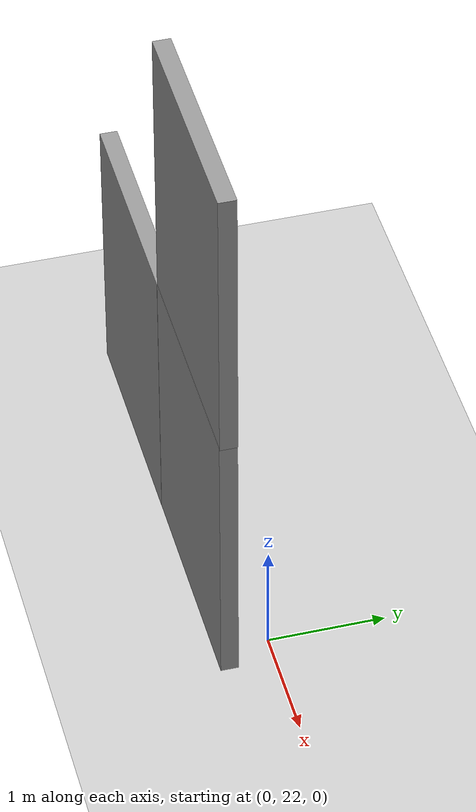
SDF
<sdf version="1.6">
 <world name="default">
  <model name="ground_plane">
   <static>1</static>
   <link name="link">
    <collision name="collision">
     <geometry><plane><normal>0 0 1</normal><size>100 100</size></plane></geometry>
     <surface><friction><ode><mu>100</mu><mu2>50</mu2></ode></friction></surface>
    </collision>
    <visual name="visual">
     <cast_shadows>0</cast_shadows>
     <geometry><plane><normal>0 0 1</normal><size>100 100</size></plane></geometry>
     <material>
      <script><uri>file://media/materials/scripts/gazebo.material</uri><name>Gazebo/Grey</name></script>
     </material>
    </visual>
   </link>
  </model>
  <model name="2mWall_0">
   <pose>-0.769249 21.6167 2.48014 0 -0 0</pose>
   <link name="Wall_0">
    <collision name="Wall_0_Collision">
     <geometry><box><size>2 0.15 2.5</size></box></geometry>
     <pose>0 0 1.25 0 -0 0</pose>
    </collision>
    <visual name="Wall_0_Visual">
     <pose>0 0 1.25 0 -0 0</pose>
     <geometry><box><size>2 0.15 2.5</size></box></geometry>
     <material>
      <script><uri>file://media/materials/scripts/gazebo.material</uri><name>Gazebo/Grey</name></script>
      <ambient>1 1 1 1</ambient>
     </material>
     <meta><layer>0</layer></meta>
    </visual>
   </link>
   <static>1</static>
  </model>
  <model name="2mWall_clone">
   <pose>-2.77161 21.6136 0 0 -0 0</pose>
   <link name="Wall_0">
    <collision name="Wall_0_Collision">
     <geometry><box><size>2 0.15 2.5</size></box></geometry>
     <pose>0 0 1.25 0 -0 0</pose>
    </collision>
    <visual name="Wall_0_Visual">
     <pose>0 0 1.25 0 -0 0</pose>
     <geometry><box><size>2 0.15 2.5</size></box></geometry>
     <material>
      <script><uri>file://media/materials/scripts/gazebo.material</uri><name>Gazebo/Grey</name></script>
      <ambient>1 1 1 1</ambient>
     </material>
     <meta><layer>0</layer></meta>
    </visual>
   </link>
   <static>1</static>
  </model>
  <model name="2mWall_0_clone">
   <pose>-0.769776 21.6145 0 0 -0 0</pose>
   <link name="Wall_0">
    <collision name="Wall_0_Collision">
     <geometry><box><size>2 0.15 2.5</size></box></geometry>
     <pose>0 0 1.25 0 -0 0</pose>
    </collision>
    <visual name="Wall_0_Visual">
     <pose>0 0 1.25 0 -0 0</pose>
     <geometry><box><size>2 0.15 2.5</size></box></geometry>
     <material>
      <script><uri>file://media/materials/scripts/gazebo.material</uri><name>Gazebo/Grey</name></script>
      <ambient>1 1 1 1</ambient>
     </material>
     <meta><layer>0</layer></meta>
    </visual>
   </link>
   <static>1</static>
  </model>
 </world>
</sdf>
